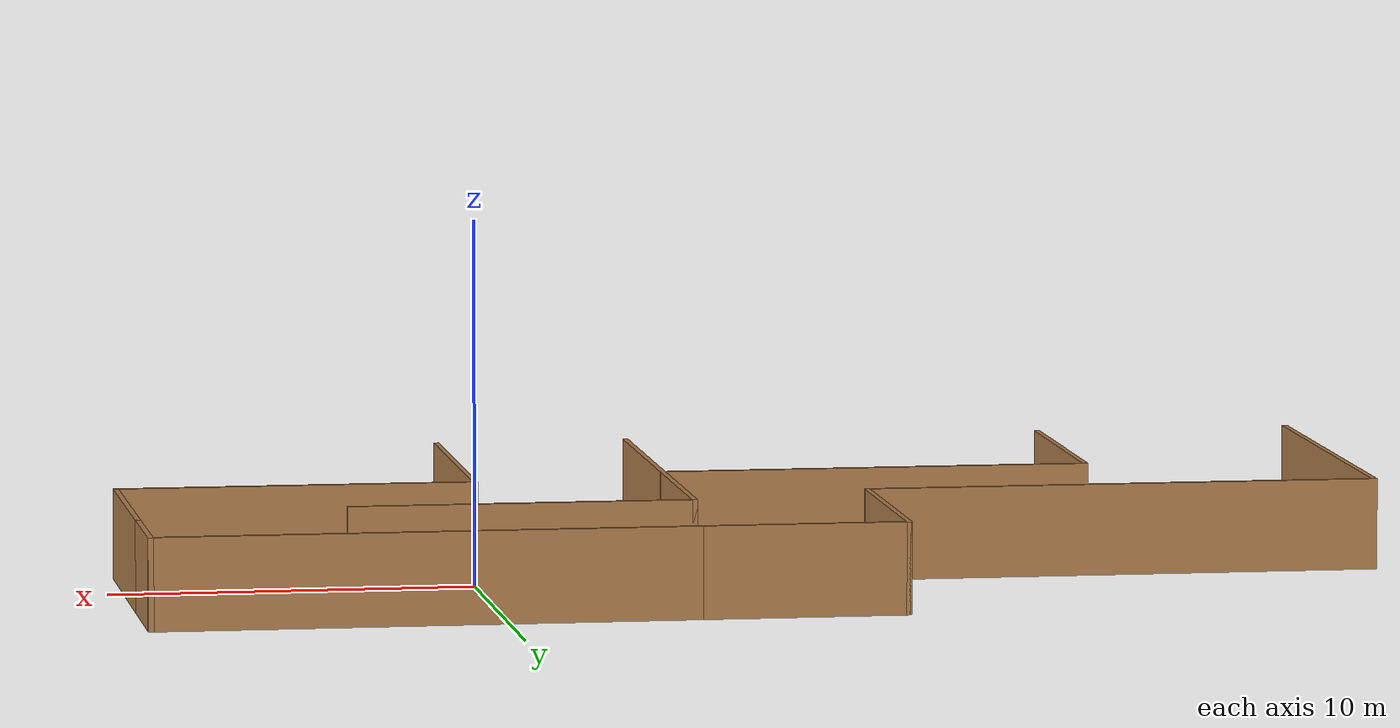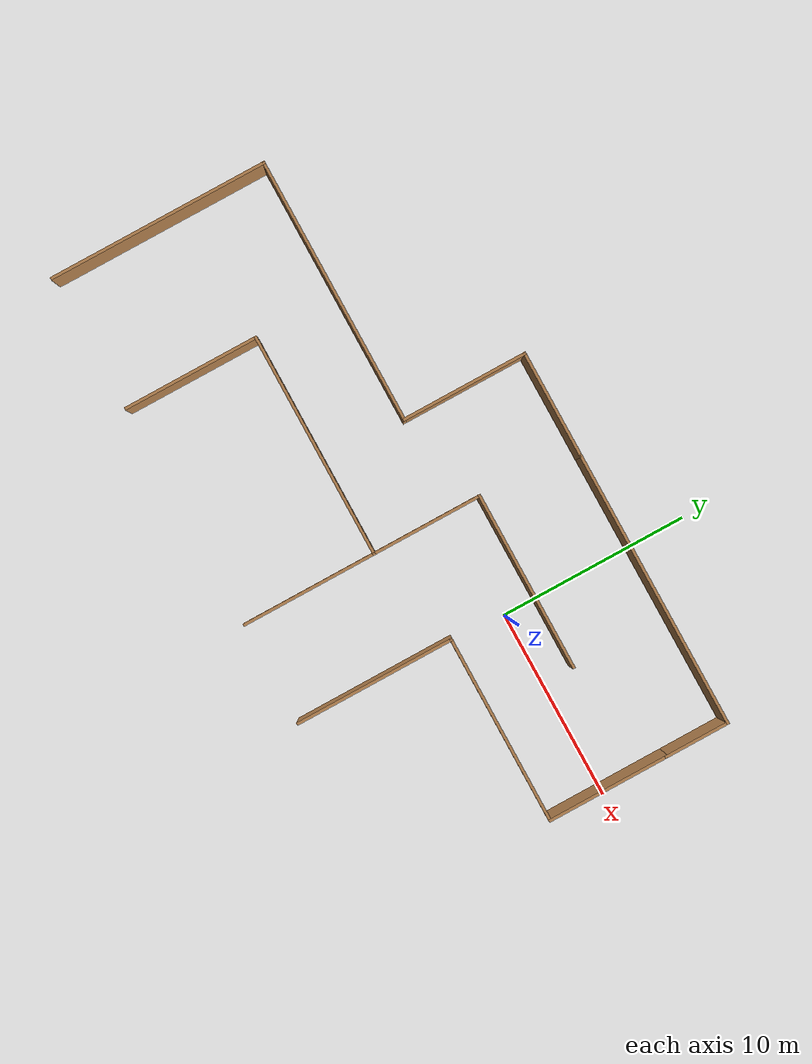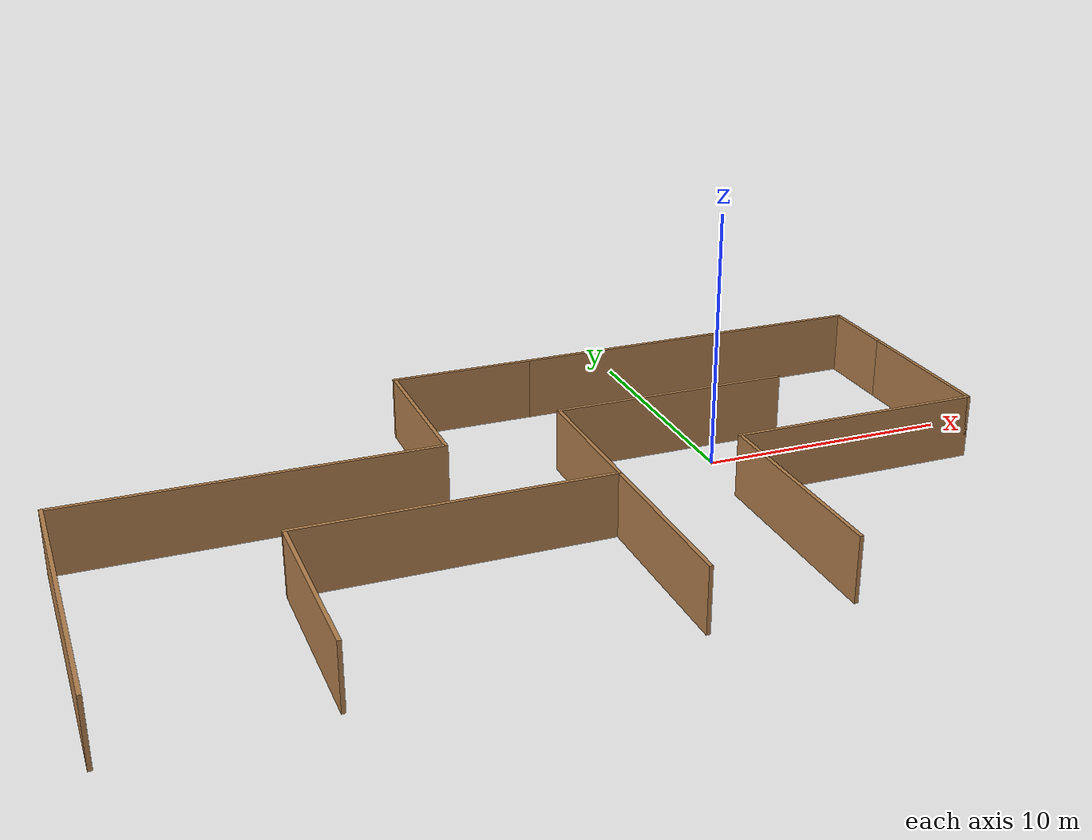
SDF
<?xml version='1.0'?>
<sdf version='1.7'>
  <model name='maze_world'>
    <pose>-7.66705 -2.28622 0 0 -0 0</pose>
    <link name='Wall_0'>
      <collision name='Wall_0_Collision'>
        <geometry>
          <box>
            <size>8.5 0.15 2.5</size>
          </box>
        </geometry>
        <pose>0 0 1.25 0 -0 0</pose>
      </collision>
      <visual name='Wall_0_Visual'>
        <pose>0 0 1.25 0 -0 0</pose>
        <geometry>
          <box>
            <size>8.5 0.15 2.5</size>
          </box>
        </geometry>
        <material>
          <script>
            <uri>file://media/materials/scripts/gazebo.material</uri>
            <name>Gazebo/Wood</name>
          </script>
          <ambient>1 1 1 1</ambient>
        </material>
        <meta>
          <layer>0</layer>
        </meta>
      </visual>
      <pose>7.3 -4.775 0 0 -0 1.5708</pose>
    </link>
    <link name='Wall_1'>
      <collision name='Wall_1_Collision'>
        <geometry>
          <box>
            <size>10 0.15 2.5</size>
          </box>
        </geometry>
        <pose>0 0 1.25 0 -0 0</pose>
      </collision>
      <visual name='Wall_1_Visual'>
        <pose>0 0 1.25 0 -0 0</pose>
        <geometry>
          <box>
            <size>10 0.15 2.5</size>
          </box>
        </geometry>
        <material>
          <script>
            <uri>file://media/materials/scripts/gazebo.material</uri>
            <name>Gazebo/Wood</name>
          </script>
          <ambient>1 1 1 1</ambient>
        </material>
        <meta>
          <layer>0</layer>
        </meta>
      </visual>
      <pose>12.225 -0.6 0 0 -0 0</pose>
    </link>
    <link name='Wall_11'>
      <collision name='Wall_11_Collision'>
        <geometry>
          <box>
            <size>13 0.15 2.5</size>
          </box>
        </geometry>
        <pose>0 0 1.25 0 -0 0</pose>
      </collision>
      <visual name='Wall_11_Visual'>
        <pose>0 0 1.25 0 -0 0</pose>
        <geometry>
          <box>
            <size>13 0.15 2.5</size>
          </box>
        </geometry>
        <material>
          <script>
            <uri>file://media/materials/scripts/gazebo.material</uri>
            <name>Gazebo/Wood</name>
          </script>
          <ambient>1 1 1 1</ambient>
        </material>
        <meta>
          <layer>0</layer>
        </meta>
      </visual>
      <pose>1.91482 -2.51496 0 0 -0 1.5708</pose>
    </link>
    <link name='Wall_12'>
      <collision name='Wall_12_Collision'>
        <geometry>
          <box>
            <size>9.5 0.15 2.5</size>
          </box>
        </geometry>
        <pose>0 0 1.25 0 -0 0</pose>
      </collision>
      <visual name='Wall_12_Visual'>
        <pose>0 0 1.25 0 -0 0</pose>
        <geometry>
          <box>
            <size>9.5 0.15 2.5</size>
          </box>
        </geometry>
        <material>
          <script>
            <uri>file://media/materials/scripts/gazebo.material</uri>
            <name>Gazebo/Wood</name>
          </script>
          <ambient>1 1 1 1</ambient>
        </material>
        <meta>
          <layer>0</layer>
        </meta>
      </visual>
      <pose>6.58982 3.91004 0 0 -0 0</pose>
    </link>
    <link name='Wall_14'>
      <collision name='Wall_14_Collision'>
        <geometry>
          <box>
            <size>12 0.15 2.5</size>
          </box>
        </geometry>
        <pose>0 0 1.25 0 -0 0</pose>
      </collision>
      <visual name='Wall_14_Visual'>
        <pose>0 0 1.25 0 -0 0</pose>
        <geometry>
          <box>
            <size>12 0.15 2.5</size>
          </box>
        </geometry>
        <material>
          <script>
            <uri>file://media/materials/scripts/gazebo.material</uri>
            <name>Gazebo/Wood</name>
          </script>
          <ambient>1 1 1 1</ambient>
        </material>
        <meta>
          <layer>0</layer>
        </meta>
      </visual>
      <pose>-4.01018 -1.86833 0 0 -0 3.14159</pose>
    </link>
    <link name='Wall_15'>
      <collision name='Wall_15_Collision'>
        <geometry>
          <box>
            <size>7.25 0.15 2.5</size>
          </box>
        </geometry>
        <pose>0 0 1.25 0 -0 0</pose>
      </collision>
      <visual name='Wall_15_Visual'>
        <pose>0 0 1.25 0 -0 0</pose>
        <geometry>
          <box>
            <size>7.25 0.15 2.5</size>
          </box>
        </geometry>
        <material>
          <script>
            <uri>file://media/materials/scripts/gazebo.material</uri>
            <name>Gazebo/Wood</name>
          </script>
          <ambient>1 1 1 1</ambient>
        </material>
        <meta>
          <layer>0</layer>
        </meta>
      </visual>
      <pose>-9.93517 -5.41833 0 0 -0 -1.5708</pose>
    </link>
    <link name='Wall_2'>
      <collision name='Wall_2_Collision'>
        <geometry>
          <box>
            <size>6.5 0.15 2.5</size>
          </box>
        </geometry>
        <pose>0 0 1.25 0 -0 0</pose>
      </collision>
      <visual name='Wall_2_Visual'>
        <pose>0 0 1.25 0 -0 0</pose>
        <geometry>
          <box>
            <size>6.5 0.15 2.5</size>
          </box>
        </geometry>
        <material>
          <script>
            <uri>file://media/materials/scripts/gazebo.material</uri>
            <name>Gazebo/Wood</name>
          </script>
          <ambient>1 1 1 1</ambient>
        </material>
        <meta>
          <layer>0</layer>
        </meta>
      </visual>
      <pose>17.15 2.575 0 0 -0 1.5708</pose>
    </link>
    <link name='Wall_3'>
      <collision name='Wall_3_Collision'>
        <geometry>
          <box>
            <size>3.5 0.15 2.5</size>
          </box>
        </geometry>
        <pose>0 0 1.25 0 -0 0</pose>
      </collision>
      <visual name='Wall_3_Visual'>
        <pose>0 0 1.25 0 -0 0</pose>
        <geometry>
          <box>
            <size>3.5 0.15 2.5</size>
          </box>
        </geometry>
        <material>
          <script>
            <uri>file://media/materials/scripts/gazebo.material</uri>
            <name>Gazebo/Wood</name>
          </script>
          <ambient>1 1 1 1</ambient>
        </material>
        <meta>
          <layer>0</layer>
        </meta>
      </visual>
      <pose>17.15 7.425 0 0 -0 1.5708</pose>
    </link>
    <link name='Wall_4'>
      <collision name='Wall_4_Collision'>
        <geometry>
          <box>
            <size>14.75 0.15 2.5</size>
          </box>
        </geometry>
        <pose>0 0 1.25 0 -0 0</pose>
      </collision>
      <visual name='Wall_4_Visual'>
        <pose>0 0 1.25 0 -0 0</pose>
        <geometry>
          <box>
            <size>14.75 0.15 2.5</size>
          </box>
        </geometry>
        <material>
          <script>
            <uri>file://media/materials/scripts/gazebo.material</uri>
            <name>Gazebo/Wood</name>
          </script>
          <ambient>1 1 1 1</ambient>
        </material>
        <meta>
          <layer>0</layer>
        </meta>
      </visual>
      <pose>9.85 9.1 0 0 -0 3.14159</pose>
    </link>
    <link name='Wall_5'>
      <collision name='Wall_5_Collision'>
        <geometry>
          <box>
            <size>5.75 0.15 2.5</size>
          </box>
        </geometry>
        <pose>0 0 1.25 0 -0 0</pose>
      </collision>
      <visual name='Wall_5_Visual'>
        <pose>0 0 1.25 0 -0 0</pose>
        <geometry>
          <box>
            <size>5.75 0.15 2.5</size>
          </box>
        </geometry>
        <material>
          <script>
            <uri>file://media/materials/scripts/gazebo.material</uri>
            <name>Gazebo/Wood</name>
          </script>
          <ambient>1 1 1 1</ambient>
        </material>
        <meta>
          <layer>0</layer>
        </meta>
      </visual>
      <pose>-0.25 9.1 0 0 -0 3.14159</pose>
    </link>
    <link name='Wall_6'>
      <collision name='Wall_6_Collision'>
        <geometry>
          <box>
            <size>6.75 0.15 2.5</size>
          </box>
        </geometry>
        <pose>0 0 1.25 0 -0 0</pose>
      </collision>
      <visual name='Wall_6_Visual'>
        <pose>0 0 1.25 0 -0 0</pose>
        <geometry>
          <box>
            <size>6.75 0.15 2.5</size>
          </box>
        </geometry>
        <material>
          <script>
            <uri>file://media/materials/scripts/gazebo.material</uri>
            <name>Gazebo/Wood</name>
          </script>
          <ambient>1 1 1 1</ambient>
        </material>
        <meta>
          <layer>0</layer>
        </meta>
      </visual>
      <pose>-3.05 5.8 0 0 -0 -1.5708</pose>
    </link>
    <link name='Wall_7'>
      <collision name='Wall_7_Collision'>
        <geometry>
          <box>
            <size>14.25 0.15 2.5</size>
          </box>
        </geometry>
        <pose>0 0 1.25 0 -0 0</pose>
      </collision>
      <visual name='Wall_7_Visual'>
        <pose>0 0 1.25 0 -0 0</pose>
        <geometry>
          <box>
            <size>14.25 0.15 2.5</size>
          </box>
        </geometry>
        <material>
          <script>
            <uri>file://media/materials/scripts/gazebo.material</uri>
            <name>Gazebo/Wood</name>
          </script>
          <ambient>1 1 1 1</ambient>
        </material>
        <meta>
          <layer>0</layer>
        </meta>
      </visual>
      <pose>-10.1 2.5 0 0 -0 3.14159</pose>
    </link>
    <link name='Wall_8'>
      <collision name='Wall_8_Collision'>
        <geometry>
          <box>
            <size>11.75 0.15 2.5</size>
          </box>
        </geometry>
        <pose>0 0 1.25 0 -0 0</pose>
      </collision>
      <visual name='Wall_8_Visual'>
        <pose>0 0 1.25 0 -0 0</pose>
        <geometry>
          <box>
            <size>11.75 0.15 2.5</size>
          </box>
        </geometry>
        <material>
          <script>
            <uri>file://media/materials/scripts/gazebo.material</uri>
            <name>Gazebo/Wood</name>
          </script>
          <ambient>1 1 1 1</ambient>
        </material>
        <meta>
          <layer>0</layer>
        </meta>
      </visual>
      <pose>-17.15 -3.3 0 0 -0 -1.5708</pose>
    </link>
    <static>1</static>
  </model>
</sdf>
